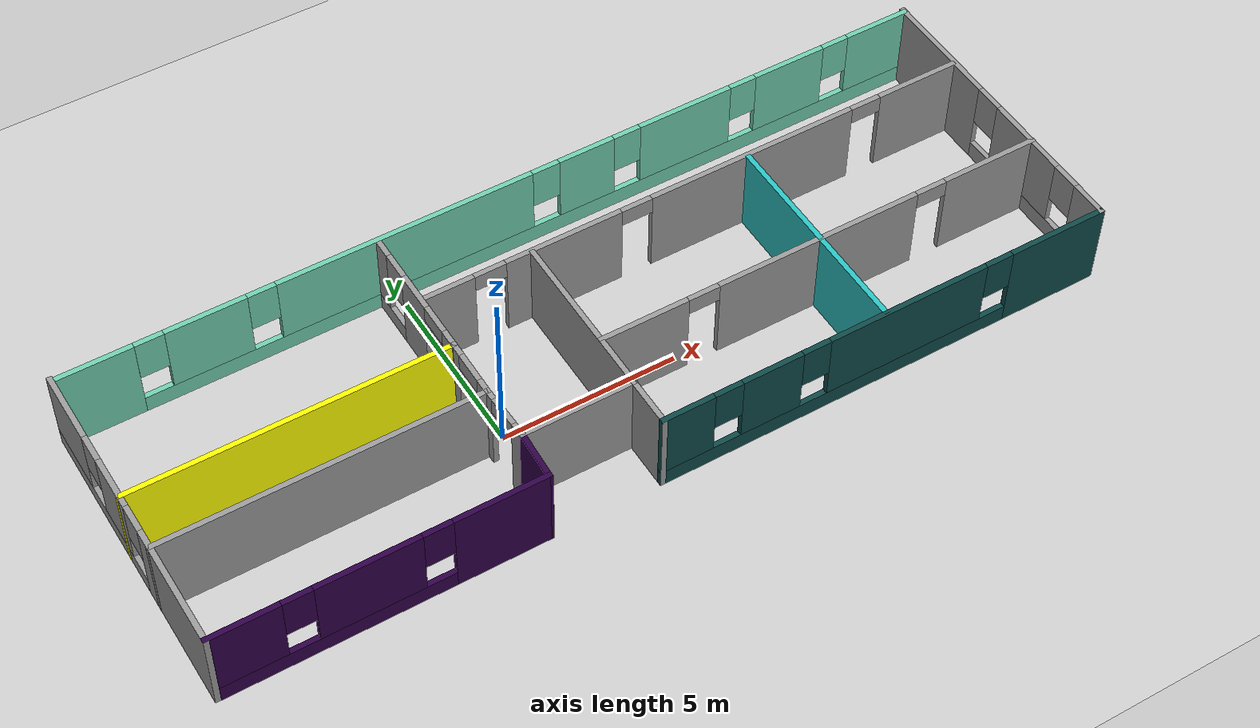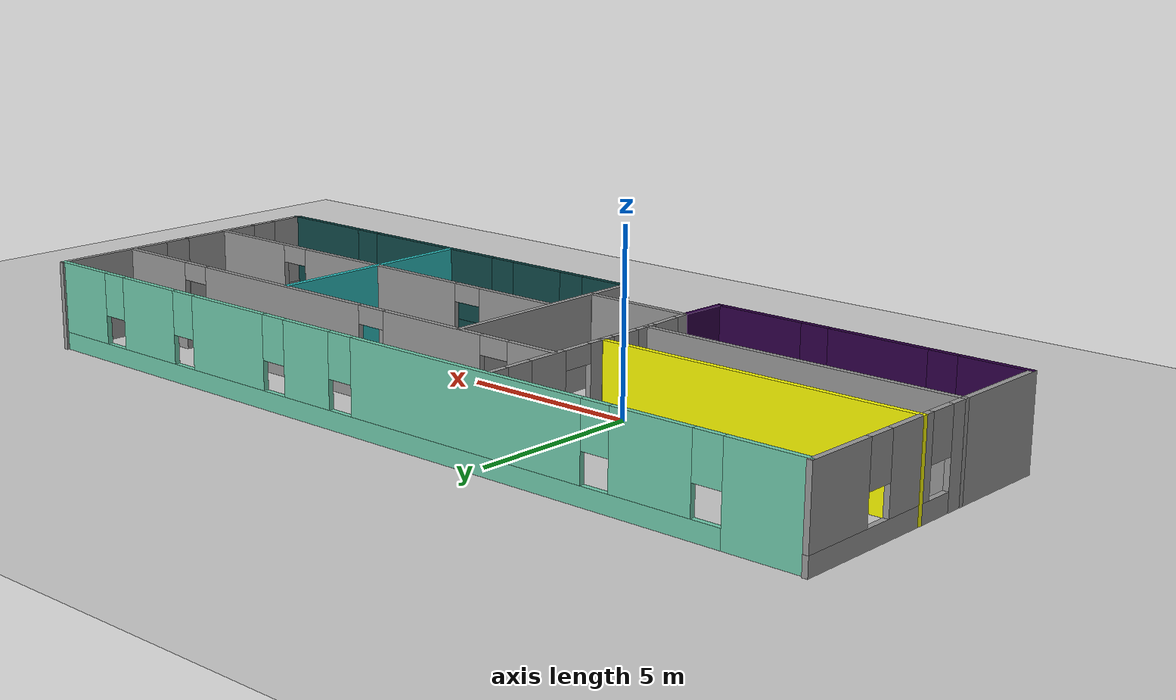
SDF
<sdf version="1.6">
 <world name="default">
  <model name="ground_plane">
   <static>1</static>
   <link name="link">
    <collision name="collision">
     <geometry><plane><normal>0 0 1</normal><size>100 100</size></plane></geometry>
     <surface>
      <contact><collide_bitmask>65535</collide_bitmask></contact>
      <friction><ode><mu>100</mu><mu2>50</mu2></ode></friction>
     </surface>
    </collision>
    <visual name="visual">
     <cast_shadows>0</cast_shadows>
     <geometry><plane><normal>0 0 1</normal><size>100 100</size></plane></geometry>
     <material>
      <script><uri>file://media/materials/scripts/gazebo.material</uri><name>Gazebo/Grey</name></script>
     </material>
    </visual>
   </link>
  </model>
  <model name="Building">
   <pose>3.20811 1.13485 0 0 -0 0</pose>
   <link name="Wall_10">
    <collision name="Wall_10_Collision">
     <geometry><box><size>1.50133 0.15 2.5</size></box></geometry>
     <pose>0 0 1.25 0 -0 0</pose>
    </collision>
    <visual name="Wall_10_Visual">
     <pose>0 0 1.25 0 -0 0</pose>
     <geometry><box><size>1.50133 0.15 2.5</size></box></geometry>
     <material>
      <script><uri>file://media/materials/scripts/gazebo.material</uri><name>Gazebo/Grey</name></script>
      <ambient>0.184314 0 0.278431 1</ambient>
     </material>
     <meta><layer>0</layer></meta>
    </visual>
    <pose>-3.67596 -3.64047 0 0 0 -1.61521</pose>
   </link>
   <link name="Wall_12">
    <collision name="Wall_12_Collision">
     <geometry><box><size>9 0.15 2.5</size></box></geometry>
     <pose>0 0 1.25 0 -0 0</pose>
    </collision>
    <visual name="Wall_12_Visual">
     <pose>0 0 1.25 0 -0 0</pose>
     <geometry><box><size>9 0.15 2.5</size></box></geometry>
     <material>
      <script><uri>file://media/materials/scripts/gazebo.material</uri><name>Gazebo/Grey</name></script>
      <ambient>1 1 1 1</ambient>
     </material>
     <meta><layer>0</layer></meta>
    </visual>
    <pose>-8.13246 -1.39539 0 0 -0 0</pose>
   </link>
   <link name="Wall_13">
    <pose>-3.67671 -2.18043 0 0 0 -1.53165</pose>
    <visual name="Wall_13_Visual_0">
     <pose>-0.681597 0 1.25 0 -0 0</pose>
     <geometry><box><size>0.35809 0.15 2.5</size></box></geometry>
     <material>
      <script><uri>file://media/materials/scripts/gazebo.material</uri><name>Gazebo/Grey</name></script>
      <ambient>1 1 1 1</ambient>
     </material>
     <meta><layer>0</layer></meta>
    </visual>
    <collision name="Wall_13_Collision_0">
     <geometry><box><size>0.35809 0.15 2.5</size></box></geometry>
     <pose>-0.681597 0 1.25 0 -0 0</pose>
    </collision>
    <visual name="Wall_13_Visual_1">
     <pose>0.629045 0 1.25 0 -0 0</pose>
     <geometry><box><size>0.463193 0.15 2.5</size></box></geometry>
     <material>
      <script><uri>file://media/materials/scripts/gazebo.material</uri><name>Gazebo/Grey</name></script>
      <ambient>1 1 1 1</ambient>
     </material>
     <meta><layer>0</layer></meta>
    </visual>
    <collision name="Wall_13_Collision_1">
     <geometry><box><size>0.463193 0.15 2.5</size></box></geometry>
     <pose>0.629045 0 1.25 0 -0 0</pose>
    </collision>
    <visual name="Wall_13_Visual_2">
     <pose>-0.052551 0 2.25 0 -0 0</pose>
     <geometry><box><size>0.9 0.15 0.5</size></box></geometry>
     <material>
      <script><uri>file://media/materials/scripts/gazebo.material</uri><name>Gazebo/Grey</name></script>
      <ambient>1 1 1 1</ambient>
     </material>
     <meta><layer>0</layer></meta>
    </visual>
    <collision name="Wall_13_Collision_2">
     <geometry><box><size>0.9 0.15 0.5</size></box></geometry>
     <pose>-0.052551 0 2.25 0 -0 0</pose>
    </collision>
   </link>
   <link name="Wall_15">
    <collision name="Wall_15_Collision">
     <geometry><box><size>9 0.15 2.5</size></box></geometry>
     <pose>0 0 1.25 0 -0 0</pose>
    </collision>
    <visual name="Wall_15_Visual">
     <pose>0 0 1.25 0 -0 0</pose>
     <geometry><box><size>9 0.15 2.5</size></box></geometry>
     <material>
      <script><uri>file://media/materials/scripts/gazebo.material</uri><name>Gazebo/Grey</name></script>
      <ambient>1 1 0 1</ambient>
     </material>
     <meta><layer>0</layer></meta>
    </visual>
    <pose>-8.13246 0.277573 0 0 -0 0</pose>
   </link>
   <link name="Wall_16">
    <collision name="Wall_16_Collision">
     <geometry><box><size>0.16 0.15 2.5</size></box></geometry>
     <pose>0 0 1.25 0 -0 0</pose>
    </collision>
    <visual name="Wall_16_Visual">
     <pose>0 0 1.25 0 -0 0</pose>
     <geometry><box><size>0.16 0.15 2.5</size></box></geometry>
     <material>
      <script><uri>file://media/materials/scripts/gazebo.material</uri><name>Gazebo/Grey</name></script>
      <ambient>1 1 1 1</ambient>
     </material>
     <meta><layer>0</layer></meta>
    </visual>
    <pose>-3.70246 0.277573 0 0 -0 0</pose>
   </link>
   <link name="Wall_17">
    <pose>-3.70246 -0.558908 0 0 0 -1.57677</pose>
    <visual name="Wall_17_Visual_0">
     <pose>-0.688342 0 1.25 0 -0 0</pose>
     <geometry><box><size>0.446309 0.15 2.5</size></box></geometry>
     <material>
      <script><uri>file://media/materials/scripts/gazebo.material</uri><name>Gazebo/Grey</name></script>
      <ambient>1 1 1 1</ambient>
     </material>
     <meta><layer>0</layer></meta>
    </visual>
    <collision name="Wall_17_Collision_0">
     <geometry><box><size>0.446309 0.15 2.5</size></box></geometry>
     <pose>-0.688342 0 1.25 0 -0 0</pose>
    </collision>
    <visual name="Wall_17_Visual_1">
     <pose>0.673154 0 1.25 0 -0 0</pose>
     <geometry><box><size>0.476684 0.15 2.5</size></box></geometry>
     <material>
      <script><uri>file://media/materials/scripts/gazebo.material</uri><name>Gazebo/Grey</name></script>
      <ambient>1 1 1 1</ambient>
     </material>
     <meta><layer>0</layer></meta>
    </visual>
    <collision name="Wall_17_Collision_1">
     <geometry><box><size>0.476684 0.15 2.5</size></box></geometry>
     <pose>0.673154 0 1.25 0 -0 0</pose>
    </collision>
    <visual name="Wall_17_Visual_2">
     <pose>-0.015188 0 2.25 0 -0 0</pose>
     <geometry><box><size>0.9 0.15 0.5</size></box></geometry>
     <material>
      <script><uri>file://media/materials/scripts/gazebo.material</uri><name>Gazebo/Grey</name></script>
      <ambient>1 1 1 1</ambient>
     </material>
     <meta><layer>0</layer></meta>
    </visual>
    <collision name="Wall_17_Collision_2">
     <geometry><box><size>0.9 0.15 0.5</size></box></geometry>
     <pose>-0.015188 0 2.25 0 -0 0</pose>
    </collision>
   </link>
   <link name="Wall_19">
    <pose>-3.69746 2.20257 0 0 -0 1.5708</pose>
    <visual name="Wall_19_Visual_0">
     <pose>-1.71603 0 1.25 0 -0 0</pose>
     <geometry><box><size>0.567942 0.15 2.5</size></box></geometry>
     <material>
      <script><uri>file://media/materials/scripts/gazebo.material</uri><name>Gazebo/Grey</name></script>
      <ambient>1 1 1 1</ambient>
     </material>
     <meta><layer>0</layer></meta>
    </visual>
    <collision name="Wall_19_Collision_0">
     <geometry><box><size>0.567942 0.15 2.5</size></box></geometry>
     <pose>-1.71603 0 1.25 0 -0 0</pose>
    </collision>
    <visual name="Wall_19_Visual_1">
     <pose>0.057167 0 1.25 0 -0 0</pose>
     <geometry><box><size>1.17845 0.15 2.5</size></box></geometry>
     <material>
      <script><uri>file://media/materials/scripts/gazebo.material</uri><name>Gazebo/Grey</name></script>
      <ambient>1 1 1 1</ambient>
     </material>
     <meta><layer>0</layer></meta>
    </visual>
    <collision name="Wall_19_Collision_1">
     <geometry><box><size>1.17845 0.15 2.5</size></box></geometry>
     <pose>0.057167 0 1.25 0 -0 0</pose>
    </collision>
    <visual name="Wall_19_Visual_2">
     <pose>1.32319 0 0.25 0 -0 0</pose>
     <geometry><box><size>1.35361 0.15 0.5</size></box></geometry>
     <material>
      <script><uri>file://media/materials/scripts/gazebo.material</uri><name>Gazebo/Grey</name></script>
      <ambient>1 1 1 1</ambient>
     </material>
     <meta><layer>0</layer></meta>
    </visual>
    <collision name="Wall_19_Collision_2">
     <geometry><box><size>1.35361 0.15 0.5</size></box></geometry>
     <pose>1.32319 0 0.25 0 -0 0</pose>
    </collision>
    <visual name="Wall_19_Visual_3">
     <pose>1.7232 0 1.5 0 -0 0</pose>
     <geometry><box><size>0.553609 0.15 2</size></box></geometry>
     <material>
      <script><uri>file://media/materials/scripts/gazebo.material</uri><name>Gazebo/Grey</name></script>
      <ambient>1 1 1 1</ambient>
     </material>
     <meta><layer>0</layer></meta>
    </visual>
    <collision name="Wall_19_Collision_3">
     <geometry><box><size>0.553609 0.15 2</size></box></geometry>
     <pose>1.7232 0 1.5 0 -0 0</pose>
    </collision>
    <visual name="Wall_19_Visual_4">
     <pose>1.04639 0 1.9 0 -0 0</pose>
     <geometry><box><size>0.8 0.15 1.2</size></box></geometry>
     <material>
      <script><uri>file://media/materials/scripts/gazebo.material</uri><name>Gazebo/Grey</name></script>
      <ambient>1 1 1 1</ambient>
     </material>
     <meta><layer>0</layer></meta>
    </visual>
    <collision name="Wall_19_Collision_4">
     <geometry><box><size>0.8 0.15 1.2</size></box></geometry>
     <pose>1.04639 0 1.9 0 -0 0</pose>
    </collision>
    <visual name="Wall_19_Visual_5">
     <pose>-0.982058 0 2.25 0 -0 0</pose>
     <geometry><box><size>0.9 0.15 0.5</size></box></geometry>
     <material>
      <script><uri>file://media/materials/scripts/gazebo.material</uri><name>Gazebo/Grey</name></script>
      <ambient>1 1 1 1</ambient>
     </material>
     <meta><layer>0</layer></meta>
    </visual>
    <collision name="Wall_19_Collision_5">
     <geometry><box><size>0.9 0.15 0.5</size></box></geometry>
     <pose>-0.982058 0 2.25 0 -0 0</pose>
    </collision>
   </link>
   <link name="Wall_2">
    <pose>-8.13096 -4.31547 0 0 -0 3.14159</pose>
    <visual name="Wall_2_Visual_0">
     <pose>-3.17905 0 1.25 0 -0 0</pose>
     <geometry><box><size>2.6419 0.15 2.5</size></box></geometry>
     <material>
      <script><uri>file://media/materials/scripts/gazebo.material</uri><name>Gazebo/Grey</name></script>
      <ambient>0.184314 0 0.278431 1</ambient>
     </material>
     <meta><layer>0</layer></meta>
    </visual>
    <collision name="Wall_2_Collision_0">
     <geometry><box><size>2.6419 0.15 2.5</size></box></geometry>
     <pose>-3.17905 0 1.25 0 -0 0</pose>
    </collision>
    <visual name="Wall_2_Visual_1">
     <pose>1.32095 0 0.25 0 -0 0</pose>
     <geometry><box><size>6.3581 0.15 0.5</size></box></geometry>
     <material>
      <script><uri>file://media/materials/scripts/gazebo.material</uri><name>Gazebo/Grey</name></script>
      <ambient>0.184314 0 0.278431 1</ambient>
     </material>
     <meta><layer>0</layer></meta>
    </visual>
    <collision name="Wall_2_Collision_1">
     <geometry><box><size>6.3581 0.15 0.5</size></box></geometry>
     <pose>1.32095 0 0.25 0 -0 0</pose>
    </collision>
    <visual name="Wall_2_Visual_2">
     <pose>0.346089 0 1.5 0 -0 0</pose>
     <geometry><box><size>2.80837 0.15 2</size></box></geometry>
     <material>
      <script><uri>file://media/materials/scripts/gazebo.material</uri><name>Gazebo/Grey</name></script>
      <ambient>0.184314 0 0.278431 1</ambient>
     </material>
     <meta><layer>0</layer></meta>
    </visual>
    <collision name="Wall_2_Collision_2">
     <geometry><box><size>2.80837 0.15 2</size></box></geometry>
     <pose>0.346089 0 1.5 0 -0 0</pose>
    </collision>
    <visual name="Wall_2_Visual_3">
     <pose>3.52514 0 1.5 0 -0 0</pose>
     <geometry><box><size>1.94972 0.15 2</size></box></geometry>
     <material>
      <script><uri>file://media/materials/scripts/gazebo.material</uri><name>Gazebo/Grey</name></script>
      <ambient>0.184314 0 0.278431 1</ambient>
     </material>
     <meta><layer>0</layer></meta>
    </visual>
    <collision name="Wall_2_Collision_3">
     <geometry><box><size>1.94972 0.15 2</size></box></geometry>
     <pose>3.52514 0 1.5 0 -0 0</pose>
    </collision>
    <visual name="Wall_2_Visual_4">
     <pose>-1.4581 0 1.9 0 -0 0</pose>
     <geometry><box><size>0.8 0.15 1.2</size></box></geometry>
     <material>
      <script><uri>file://media/materials/scripts/gazebo.material</uri><name>Gazebo/Grey</name></script>
      <ambient>0.184314 0 0.278431 1</ambient>
     </material>
     <meta><layer>0</layer></meta>
    </visual>
    <collision name="Wall_2_Collision_4">
     <geometry><box><size>0.8 0.15 1.2</size></box></geometry>
     <pose>-1.4581 0 1.9 0 -0 0</pose>
    </collision>
    <visual name="Wall_2_Visual_5">
     <pose>2.15028 0 1.9 0 -0 0</pose>
     <geometry><box><size>0.8 0.15 1.2</size></box></geometry>
     <material>
      <script><uri>file://media/materials/scripts/gazebo.material</uri><name>Gazebo/Grey</name></script>
      <ambient>0.184314 0 0.278431 1</ambient>
     </material>
     <meta><layer>0</layer></meta>
    </visual>
    <collision name="Wall_2_Collision_5">
     <geometry><box><size>0.8 0.15 1.2</size></box></geometry>
     <pose>2.15028 0 1.9 0 -0 0</pose>
    </collision>
   </link>
   <link name="Wall_21">
    <collision name="Wall_21_Collision">
     <geometry><box><size>5 0.15 2.5</size></box></geometry>
     <pose>0 0 1.25 0 -0 0</pose>
    </collision>
    <visual name="Wall_21_Visual">
     <pose>0 0 1.25 0 -0 0</pose>
     <geometry><box><size>5 0.15 2.5</size></box></geometry>
     <material>
      <script><uri>file://media/materials/scripts/gazebo.material</uri><name>Gazebo/Grey</name></script>
      <ambient>1 1 1 1</ambient>
     </material>
     <meta><layer>0</layer></meta>
    </visual>
    <pose>-0.545964 -0.54047 0 0 -0 1.5708</pose>
   </link>
   <link name="Wall_24">
    <pose>4.40487 1.95053 0 0 -0 0</pose>
    <visual name="Wall_24_Visual_0">
     <pose>-7.36956 0 1.25 0 -0 0</pose>
     <geometry><box><size>1.51089 0.15 2.5</size></box></geometry>
     <material>
      <script><uri>file://media/materials/scripts/gazebo.material</uri><name>Gazebo/Grey</name></script>
      <ambient>0.580392 0.568627 0.568627 1</ambient>
     </material>
     <meta><layer>0</layer></meta>
    </visual>
    <collision name="Wall_24_Collision_0">
     <geometry><box><size>1.51089 0.15 2.5</size></box></geometry>
     <pose>-7.36956 0 1.25 0 -0 0</pose>
    </collision>
    <visual name="Wall_24_Visual_1">
     <pose>-4.01968 0 1.25 0 -0 0</pose>
     <geometry><box><size>3.38887 0.15 2.5</size></box></geometry>
     <material>
      <script><uri>file://media/materials/scripts/gazebo.material</uri><name>Gazebo/Grey</name></script>
      <ambient>0.580392 0.568627 0.568627 1</ambient>
     </material>
     <meta><layer>0</layer></meta>
    </visual>
    <collision name="Wall_24_Collision_1">
     <geometry><box><size>3.38887 0.15 2.5</size></box></geometry>
     <pose>-4.01968 0 1.25 0 -0 0</pose>
    </collision>
    <visual name="Wall_24_Visual_2">
     <pose>1.66839 0 1.25 0 -0 0</pose>
     <geometry><box><size>6.18728 0.15 2.5</size></box></geometry>
     <material>
      <script><uri>file://media/materials/scripts/gazebo.material</uri><name>Gazebo/Grey</name></script>
      <ambient>0.580392 0.568627 0.568627 1</ambient>
     </material>
     <meta><layer>0</layer></meta>
    </visual>
    <collision name="Wall_24_Collision_2">
     <geometry><box><size>6.18728 0.15 2.5</size></box></geometry>
     <pose>1.66839 0 1.25 0 -0 0</pose>
    </collision>
    <visual name="Wall_24_Visual_3">
     <pose>6.89351 0 1.25 0 -0 0</pose>
     <geometry><box><size>2.46297 0.15 2.5</size></box></geometry>
     <material>
      <script><uri>file://media/materials/scripts/gazebo.material</uri><name>Gazebo/Grey</name></script>
      <ambient>0.580392 0.568627 0.568627 1</ambient>
     </material>
     <meta><layer>0</layer></meta>
    </visual>
    <collision name="Wall_24_Collision_3">
     <geometry><box><size>2.46297 0.15 2.5</size></box></geometry>
     <pose>6.89351 0 1.25 0 -0 0</pose>
    </collision>
    <visual name="Wall_24_Visual_4">
     <pose>-6.16411 0 2.25 0 -0 0</pose>
     <geometry><box><size>0.9 0.15 0.5</size></box></geometry>
     <material>
      <script><uri>file://media/materials/scripts/gazebo.material</uri><name>Gazebo/Grey</name></script>
      <ambient>0.580392 0.568627 0.568627 1</ambient>
     </material>
     <meta><layer>0</layer></meta>
    </visual>
    <collision name="Wall_24_Collision_4">
     <geometry><box><size>0.9 0.15 0.5</size></box></geometry>
     <pose>-6.16411 0 2.25 0 -0 0</pose>
    </collision>
    <visual name="Wall_24_Visual_5">
     <pose>-1.87525 0 2.25 0 -0 0</pose>
     <geometry><box><size>0.9 0.15 0.5</size></box></geometry>
     <material>
      <script><uri>file://media/materials/scripts/gazebo.material</uri><name>Gazebo/Grey</name></script>
      <ambient>0.580392 0.568627 0.568627 1</ambient>
     </material>
     <meta><layer>0</layer></meta>
    </visual>
    <collision name="Wall_24_Collision_5">
     <geometry><box><size>0.9 0.15 0.5</size></box></geometry>
     <pose>-1.87525 0 2.25 0 -0 0</pose>
    </collision>
    <visual name="Wall_24_Visual_6">
     <pose>5.21203 0 2.25 0 -0 0</pose>
     <geometry><box><size>0.9 0.15 0.5</size></box></geometry>
     <material>
      <script><uri>file://media/materials/scripts/gazebo.material</uri><name>Gazebo/Grey</name></script>
      <ambient>0.580392 0.568627 0.568627 1</ambient>
     </material>
     <meta><layer>0</layer></meta>
    </visual>
    <collision name="Wall_24_Collision_6">
     <geometry><box><size>0.9 0.15 0.5</size></box></geometry>
     <pose>5.21203 0 2.25 0 -0 0</pose>
    </collision>
   </link>
   <link name="Wall_26">
    <pose>6.00746 -1.42581 0 0 -0 0</pose>
    <visual name="Wall_26_Visual_0">
     <pose>-5.33725 0 1.25 0 -0 0</pose>
     <geometry><box><size>2.5755 0.15 2.5</size></box></geometry>
     <material>
      <script><uri>file://media/materials/scripts/gazebo.material</uri><name>Gazebo/Grey</name></script>
      <ambient>0.580392 0.568627 0.568627 1</ambient>
     </material>
     <meta><layer>0</layer></meta>
    </visual>
    <collision name="Wall_26_Collision_0">
     <geometry><box><size>2.5755 0.15 2.5</size></box></geometry>
     <pose>-5.33725 0 1.25 0 -0 0</pose>
    </collision>
    <visual name="Wall_26_Visual_1">
     <pose>-0.147116 0 1.25 0 -0 0</pose>
     <geometry><box><size>6.00477 0.15 2.5</size></box></geometry>
     <material>
      <script><uri>file://media/materials/scripts/gazebo.material</uri><name>Gazebo/Grey</name></script>
      <ambient>0.580392 0.568627 0.568627 1</ambient>
     </material>
     <meta><layer>0</layer></meta>
    </visual>
    <collision name="Wall_26_Collision_1">
     <geometry><box><size>6.00477 0.15 2.5</size></box></geometry>
     <pose>-0.147116 0 1.25 0 -0 0</pose>
    </collision>
    <visual name="Wall_26_Visual_2">
     <pose>5.19013 0 1.25 0 -0 0</pose>
     <geometry><box><size>2.86973 0.15 2.5</size></box></geometry>
     <material>
      <script><uri>file://media/materials/scripts/gazebo.material</uri><name>Gazebo/Grey</name></script>
      <ambient>0.580392 0.568627 0.568627 1</ambient>
     </material>
     <meta><layer>0</layer></meta>
    </visual>
    <collision name="Wall_26_Collision_2">
     <geometry><box><size>2.86973 0.15 2.5</size></box></geometry>
     <pose>5.19013 0 1.25 0 -0 0</pose>
    </collision>
    <visual name="Wall_26_Visual_3">
     <pose>-3.5995 0 2.25 0 -0 0</pose>
     <geometry><box><size>0.9 0.15 0.5</size></box></geometry>
     <material>
      <script><uri>file://media/materials/scripts/gazebo.material</uri><name>Gazebo/Grey</name></script>
      <ambient>0.580392 0.568627 0.568627 1</ambient>
     </material>
     <meta><layer>0</layer></meta>
    </visual>
    <collision name="Wall_26_Collision_3">
     <geometry><box><size>0.9 0.15 0.5</size></box></geometry>
     <pose>-3.5995 0 2.25 0 -0 0</pose>
    </collision>
    <visual name="Wall_26_Visual_4">
     <pose>3.30527 0 2.25 0 -0 0</pose>
     <geometry><box><size>0.9 0.15 0.5</size></box></geometry>
     <material>
      <script><uri>file://media/materials/scripts/gazebo.material</uri><name>Gazebo/Grey</name></script>
      <ambient>0.580392 0.568627 0.568627 1</ambient>
     </material>
     <meta><layer>0</layer></meta>
    </visual>
    <collision name="Wall_26_Collision_4">
     <geometry><box><size>0.9 0.15 0.5</size></box></geometry>
     <pose>3.30527 0 2.25 0 -0 0</pose>
    </collision>
   </link>
   <link name="Wall_28">
    <collision name="Wall_28_Collision">
     <geometry><box><size>6.25 0.15 2.5</size></box></geometry>
     <pose>0 0 1.25 0 -0 0</pose>
    </collision>
    <visual name="Wall_28_Visual">
     <pose>0 0 1.25 0 -0 0</pose>
     <geometry><box><size>6.25 0.15 2.5</size></box></geometry>
     <material>
      <script><uri>file://media/materials/scripts/gazebo.material</uri><name>Gazebo/Grey</name></script>
      <ambient>0.164706 0.760784 0.760784 1</ambient>
     </material>
     <meta><layer>0</layer></meta>
    </visual>
    <pose>5.90597 -1.20115 0 0 0 -1.5708</pose>
   </link>
   <link name="Wall_3">
    <pose>-12.556 0.001628 0 0 -0 1.5708</pose>
    <visual name="Wall_3_Visual_0">
     <pose>-2.62283 0 1.25 0 -0 0</pose>
     <geometry><box><size>3.53854 0.15 2.5</size></box></geometry>
     <material>
      <script><uri>file://media/materials/scripts/gazebo.material</uri><name>Gazebo/Grey</name></script>
      <ambient>1 1 1 1</ambient>
     </material>
     <meta><layer>0</layer></meta>
    </visual>
    <collision name="Wall_3_Collision_0">
     <geometry><box><size>3.53854 0.15 2.5</size></box></geometry>
     <pose>-2.62283 0 1.25 0 -0 0</pose>
    </collision>
    <visual name="Wall_3_Visual_1">
     <pose>1.76927 0 0.25 0 -0 0</pose>
     <geometry><box><size>5.24566 0.15 0.5</size></box></geometry>
     <material>
      <script><uri>file://media/materials/scripts/gazebo.material</uri><name>Gazebo/Grey</name></script>
      <ambient>1 1 1 1</ambient>
     </material>
     <meta><layer>0</layer></meta>
    </visual>
    <collision name="Wall_3_Collision_1">
     <geometry><box><size>5.24566 0.15 0.5</size></box></geometry>
     <pose>1.76927 0 0.25 0 -0 0</pose>
    </collision>
    <visual name="Wall_3_Visual_2">
     <pose>0.7261 0 1.5 0 -0 0</pose>
     <geometry><box><size>1.55932 0.15 2</size></box></geometry>
     <material>
      <script><uri>file://media/materials/scripts/gazebo.material</uri><name>Gazebo/Grey</name></script>
      <ambient>1 1 1 1</ambient>
     </material>
     <meta><layer>0</layer></meta>
    </visual>
    <collision name="Wall_3_Collision_2">
     <geometry><box><size>1.55932 0.15 2</size></box></geometry>
     <pose>0.7261 0 1.5 0 -0 0</pose>
    </collision>
    <visual name="Wall_3_Visual_3">
     <pose>3.34893 0 1.5 0 -0 0</pose>
     <geometry><box><size>2.08634 0.15 2</size></box></geometry>
     <material>
      <script><uri>file://media/materials/scripts/gazebo.material</uri><name>Gazebo/Grey</name></script>
      <ambient>1 1 1 1</ambient>
     </material>
     <meta><layer>0</layer></meta>
    </visual>
    <collision name="Wall_3_Collision_3">
     <geometry><box><size>2.08634 0.15 2</size></box></geometry>
     <pose>3.34893 0 1.5 0 -0 0</pose>
    </collision>
    <visual name="Wall_3_Visual_4">
     <pose>-0.453561 0 1.9 0 -0 0</pose>
     <geometry><box><size>0.8 0.15 1.2</size></box></geometry>
     <material>
      <script><uri>file://media/materials/scripts/gazebo.material</uri><name>Gazebo/Grey</name></script>
      <ambient>1 1 1 1</ambient>
     </material>
     <meta><layer>0</layer></meta>
    </visual>
    <collision name="Wall_3_Collision_4">
     <geometry><box><size>0.8 0.15 1.2</size></box></geometry>
     <pose>-0.453561 0 1.9 0 -0 0</pose>
    </collision>
    <visual name="Wall_3_Visual_5">
     <pose>1.90576 0 1.9 0 -0 0</pose>
     <geometry><box><size>0.8 0.15 1.2</size></box></geometry>
     <material>
      <script><uri>file://media/materials/scripts/gazebo.material</uri><name>Gazebo/Grey</name></script>
      <ambient>1 1 1 1</ambient>
     </material>
     <meta><layer>0</layer></meta>
    </visual>
    <collision name="Wall_3_Collision_5">
     <geometry><box><size>0.8 0.15 1.2</size></box></geometry>
     <pose>1.90576 0 1.9 0 -0 0</pose>
    </collision>
   </link>
   <link name="Wall_4">
    <pose>-0.005964 4.25789 0 0 -0 0</pose>
    <visual name="Wall_4_Visual_0">
     <pose>-11.5114 0 1.25 0 -0 0</pose>
     <geometry><box><size>2.22729 0.15 2.5</size></box></geometry>
     <material>
      <script><uri>file://media/materials/scripts/gazebo.material</uri><name>Gazebo/Grey</name></script>
      <ambient>0.435294 0.796078 0.67451 1</ambient>
     </material>
     <meta><layer>0</layer></meta>
    </visual>
    <collision name="Wall_4_Collision_0">
     <geometry><box><size>2.22729 0.15 2.5</size></box></geometry>
     <pose>-11.5114 0 1.25 0 -0 0</pose>
    </collision>
    <visual name="Wall_4_Visual_1">
     <pose>1.11365 0 0.25 0 -0 0</pose>
     <geometry><box><size>23.0227 0.15 0.5</size></box></geometry>
     <material>
      <script><uri>file://media/materials/scripts/gazebo.material</uri><name>Gazebo/Grey</name></script>
      <ambient>0.435294 0.796078 0.67451 1</ambient>
     </material>
     <meta><layer>0</layer></meta>
    </visual>
    <collision name="Wall_4_Collision_1">
     <geometry><box><size>23.0227 0.15 0.5</size></box></geometry>
     <pose>1.11365 0 0.25 0 -0 0</pose>
    </collision>
    <visual name="Wall_4_Visual_2">
     <pose>-8.47109 0 1.5 0 -0 0</pose>
     <geometry><box><size>2.25324 0.15 2</size></box></geometry>
     <material>
      <script><uri>file://media/materials/scripts/gazebo.material</uri><name>Gazebo/Grey</name></script>
      <ambient>0.435294 0.796078 0.67451 1</ambient>
     </material>
     <meta><layer>0</layer></meta>
    </visual>
    <collision name="Wall_4_Collision_2">
     <geometry><box><size>2.25324 0.15 2</size></box></geometry>
     <pose>-8.47109 0 1.5 0 -0 0</pose>
    </collision>
    <visual name="Wall_4_Visual_3">
     <pose>-2.87348 0 1.5 0 -0 0</pose>
     <geometry><box><size>7.34197 0.15 2</size></box></geometry>
     <material>
      <script><uri>file://media/materials/scripts/gazebo.material</uri><name>Gazebo/Grey</name></script>
      <ambient>0.435294 0.796078 0.67451 1</ambient>
     </material>
     <meta><layer>0</layer></meta>
    </visual>
    <collision name="Wall_4_Collision_3">
     <geometry><box><size>7.34197 0.15 2</size></box></geometry>
     <pose>-2.87348 0 1.5 0 -0 0</pose>
    </collision>
    <visual name="Wall_4_Visual_4">
     <pose>2.42343 0 1.5 0 -0 0</pose>
     <geometry><box><size>1.65184 0.15 2</size></box></geometry>
     <material>
      <script><uri>file://media/materials/scripts/gazebo.material</uri><name>Gazebo/Grey</name></script>
      <ambient>0.435294 0.796078 0.67451 1</ambient>
     </material>
     <meta><layer>0</layer></meta>
    </visual>
    <collision name="Wall_4_Collision_4">
     <geometry><box><size>1.65184 0.15 2</size></box></geometry>
     <pose>2.42343 0 1.5 0 -0 0</pose>
    </collision>
    <visual name="Wall_4_Visual_5">
     <pose>5.45354 0 1.5 0 -0 0</pose>
     <geometry><box><size>2.80837 0.15 2</size></box></geometry>
     <material>
      <script><uri>file://media/materials/scripts/gazebo.material</uri><name>Gazebo/Grey</name></script>
      <ambient>0.435294 0.796078 0.67451 1</ambient>
     </material>
     <meta><layer>0</layer></meta>
    </visual>
    <collision name="Wall_4_Collision_5">
     <geometry><box><size>2.80837 0.15 2</size></box></geometry>
     <pose>5.45354 0 1.5 0 -0 0</pose>
    </collision>
    <visual name="Wall_4_Visual_6">
     <pose>8.73808 0 1.5 0 -0 0</pose>
     <geometry><box><size>2.16072 0.15 2</size></box></geometry>
     <material>
      <script><uri>file://media/materials/scripts/gazebo.material</uri><name>Gazebo/Grey</name></script>
      <ambient>0.435294 0.796078 0.67451 1</ambient>
     </material>
     <meta><layer>0</layer></meta>
    </visual>
    <collision name="Wall_4_Collision_6">
     <geometry><box><size>2.16072 0.15 2</size></box></geometry>
     <pose>8.73808 0 1.5 0 -0 0</pose>
    </collision>
    <visual name="Wall_4_Visual_7">
     <pose>11.6217 0 1.5 0 -0 0</pose>
     <geometry><box><size>2.00656 0.15 2</size></box></geometry>
     <material>
      <script><uri>file://media/materials/scripts/gazebo.material</uri><name>Gazebo/Grey</name></script>
      <ambient>0.435294 0.796078 0.67451 1</ambient>
     </material>
     <meta><layer>0</layer></meta>
    </visual>
    <collision name="Wall_4_Collision_7">
     <geometry><box><size>2.00656 0.15 2</size></box></geometry>
     <pose>11.6217 0 1.5 0 -0 0</pose>
    </collision>
    <visual name="Wall_4_Visual_8">
     <pose>-9.99771 0 1.9 0 -0 0</pose>
     <geometry><box><size>0.8 0.15 1.2</size></box></geometry>
     <material>
      <script><uri>file://media/materials/scripts/gazebo.material</uri><name>Gazebo/Grey</name></script>
      <ambient>0.435294 0.796078 0.67451 1</ambient>
     </material>
     <meta><layer>0</layer></meta>
    </visual>
    <collision name="Wall_4_Collision_8">
     <geometry><box><size>0.8 0.15 1.2</size></box></geometry>
     <pose>-9.99771 0 1.9 0 -0 0</pose>
    </collision>
    <visual name="Wall_4_Visual_9">
     <pose>-6.94447 0 1.9 0 -0 0</pose>
     <geometry><box><size>0.8 0.15 1.2</size></box></geometry>
     <material>
      <script><uri>file://media/materials/scripts/gazebo.material</uri><name>Gazebo/Grey</name></script>
      <ambient>0.435294 0.796078 0.67451 1</ambient>
     </material>
     <meta><layer>0</layer></meta>
    </visual>
    <collision name="Wall_4_Collision_9">
     <geometry><box><size>0.8 0.15 1.2</size></box></geometry>
     <pose>-6.94447 0 1.9 0 -0 0</pose>
    </collision>
    <visual name="Wall_4_Visual_10">
     <pose>1.19751 0 1.9 0 -0 0</pose>
     <geometry><box><size>0.8 0.15 1.2</size></box></geometry>
     <material>
      <script><uri>file://media/materials/scripts/gazebo.material</uri><name>Gazebo/Grey</name></script>
      <ambient>0.435294 0.796078 0.67451 1</ambient>
     </material>
     <meta><layer>0</layer></meta>
    </visual>
    <collision name="Wall_4_Collision_10">
     <geometry><box><size>0.8 0.15 1.2</size></box></geometry>
     <pose>1.19751 0 1.9 0 -0 0</pose>
    </collision>
    <visual name="Wall_4_Visual_11">
     <pose>3.64935 0 1.9 0 -0 0</pose>
     <geometry><box><size>0.8 0.15 1.2</size></box></geometry>
     <material>
      <script><uri>file://media/materials/scripts/gazebo.material</uri><name>Gazebo/Grey</name></script>
      <ambient>0.435294 0.796078 0.67451 1</ambient>
     </material>
     <meta><layer>0</layer></meta>
    </visual>
    <collision name="Wall_4_Collision_11">
     <geometry><box><size>0.8 0.15 1.2</size></box></geometry>
     <pose>3.64935 0 1.9 0 -0 0</pose>
    </collision>
    <visual name="Wall_4_Visual_12">
     <pose>7.25772 0 1.9 0 -0 0</pose>
     <geometry><box><size>0.8 0.15 1.2</size></box></geometry>
     <material>
      <script><uri>file://media/materials/scripts/gazebo.material</uri><name>Gazebo/Grey</name></script>
      <ambient>0.435294 0.796078 0.67451 1</ambient>
     </material>
     <meta><layer>0</layer></meta>
    </visual>
    <collision name="Wall_4_Collision_12">
     <geometry><box><size>0.8 0.15 1.2</size></box></geometry>
     <pose>7.25772 0 1.9 0 -0 0</pose>
    </collision>
    <visual name="Wall_4_Visual_13">
     <pose>10.2184 0 1.9 0 -0 0</pose>
     <geometry><box><size>0.8 0.15 1.2</size></box></geometry>
     <material>
      <script><uri>file://media/materials/scripts/gazebo.material</uri><name>Gazebo/Grey</name></script>
      <ambient>0.435294 0.796078 0.67451 1</ambient>
     </material>
     <meta><layer>0</layer></meta>
    </visual>
    <collision name="Wall_4_Collision_13">
     <geometry><box><size>0.8 0.15 1.2</size></box></geometry>
     <pose>10.2184 0 1.9 0 -0 0</pose>
    </collision>
   </link>
   <link name="Wall_5">
    <pose>12.544 0.001628 0 0 0 -1.5708</pose>
    <visual name="Wall_5_Visual_0">
     <pose>-2.58562 0 1.25 0 -0 0</pose>
     <geometry><box><size>3.61296 0.15 2.5</size></box></geometry>
     <material>
      <script><uri>file://media/materials/scripts/gazebo.material</uri><name>Gazebo/Grey</name></script>
      <ambient>0.580392 0.568627 0.568627 1</ambient>
     </material>
     <meta><layer>0</layer></meta>
    </visual>
    <collision name="Wall_5_Collision_0">
     <geometry><box><size>3.61296 0.15 2.5</size></box></geometry>
     <pose>-2.58562 0 1.25 0 -0 0</pose>
    </collision>
    <visual name="Wall_5_Visual_1">
     <pose>1.80648 0 0.25 0 -0 0</pose>
     <geometry><box><size>5.17124 0.15 0.5</size></box></geometry>
     <material>
      <script><uri>file://media/materials/scripts/gazebo.material</uri><name>Gazebo/Grey</name></script>
      <ambient>0.580392 0.568627 0.568627 1</ambient>
     </material>
     <meta><layer>0</layer></meta>
    </visual>
    <collision name="Wall_5_Collision_1">
     <geometry><box><size>5.17124 0.15 0.5</size></box></geometry>
     <pose>1.80648 0 0.25 0 -0 0</pose>
    </collision>
    <visual name="Wall_5_Visual_2">
     <pose>1.26313 0 1.5 0 -0 0</pose>
     <geometry><box><size>2.48455 0.15 2</size></box></geometry>
     <material>
      <script><uri>file://media/materials/scripts/gazebo.material</uri><name>Gazebo/Grey</name></script>
      <ambient>0.580392 0.568627 0.568627 1</ambient>
     </material>
     <meta><layer>0</layer></meta>
    </visual>
    <collision name="Wall_5_Collision_2">
     <geometry><box><size>2.48455 0.15 2</size></box></geometry>
     <pose>1.26313 0 1.5 0 -0 0</pose>
    </collision>
    <visual name="Wall_5_Visual_3">
     <pose>3.84875 0 1.5 0 -0 0</pose>
     <geometry><box><size>1.08669 0.15 2</size></box></geometry>
     <material>
      <script><uri>file://media/materials/scripts/gazebo.material</uri><name>Gazebo/Grey</name></script>
      <ambient>0.580392 0.568627 0.568627 1</ambient>
     </material>
     <meta><layer>0</layer></meta>
    </visual>
    <collision name="Wall_5_Collision_3">
     <geometry><box><size>1.08669 0.15 2</size></box></geometry>
     <pose>3.84875 0 1.5 0 -0 0</pose>
    </collision>
    <visual name="Wall_5_Visual_4">
     <pose>-0.37914 0 1.9 0 -0 0</pose>
     <geometry><box><size>0.8 0.15 1.2</size></box></geometry>
     <material>
      <script><uri>file://media/materials/scripts/gazebo.material</uri><name>Gazebo/Grey</name></script>
      <ambient>0.580392 0.568627 0.568627 1</ambient>
     </material>
     <meta><layer>0</layer></meta>
    </visual>
    <collision name="Wall_5_Collision_4">
     <geometry><box><size>0.8 0.15 1.2</size></box></geometry>
     <pose>-0.37914 0 1.9 0 -0 0</pose>
    </collision>
    <visual name="Wall_5_Visual_5">
     <pose>2.90541 0 1.9 0 -0 0</pose>
     <geometry><box><size>0.8 0.15 1.2</size></box></geometry>
     <material>
      <script><uri>file://media/materials/scripts/gazebo.material</uri><name>Gazebo/Grey</name></script>
      <ambient>0.580392 0.568627 0.568627 1</ambient>
     </material>
     <meta><layer>0</layer></meta>
    </visual>
    <collision name="Wall_5_Collision_5">
     <geometry><box><size>0.8 0.15 1.2</size></box></geometry>
     <pose>2.90541 0 1.9 0 -0 0</pose>
    </collision>
   </link>
   <link name="Wall_6">
    <pose>5.99404 -4.31547 0 0 -0 3.14159</pose>
    <visual name="Wall_6_Visual_0">
     <pose>-5.18224 0 1.25 0 -0 0</pose>
     <geometry><box><size>2.88552 0.15 2.5</size></box></geometry>
     <material>
      <script><uri>file://media/materials/scripts/gazebo.material</uri><name>Gazebo/Grey</name></script>
      <ambient>0.0588235 0.278431 0.278431 1</ambient>
     </material>
     <meta><layer>0</layer></meta>
    </visual>
    <collision name="Wall_6_Collision_0">
     <geometry><box><size>2.88552 0.15 2.5</size></box></geometry>
     <pose>-5.18224 0 1.25 0 -0 0</pose>
    </collision>
    <visual name="Wall_6_Visual_1">
     <pose>1.44276 0 0.25 0 -0 0</pose>
     <geometry><box><size>10.3645 0.15 0.5</size></box></geometry>
     <material>
      <script><uri>file://media/materials/scripts/gazebo.material</uri><name>Gazebo/Grey</name></script>
      <ambient>0.0588235 0.278431 0.278431 1</ambient>
     </material>
     <meta><layer>0</layer></meta>
    </visual>
    <collision name="Wall_6_Collision_1">
     <geometry><box><size>10.3645 0.15 0.5</size></box></geometry>
     <pose>1.44276 0 0.25 0 -0 0</pose>
    </collision>
    <visual name="Wall_6_Visual_2">
     <pose>-0.586938 0 1.5 0 -0 0</pose>
     <geometry><box><size>4.70509 0.15 2</size></box></geometry>
     <material>
      <script><uri>file://media/materials/scripts/gazebo.material</uri><name>Gazebo/Grey</name></script>
      <ambient>0.0588235 0.278431 0.278431 1</ambient>
     </material>
     <meta><layer>0</layer></meta>
    </visual>
    <collision name="Wall_6_Collision_2">
     <geometry><box><size>4.70509 0.15 2</size></box></geometry>
     <pose>-0.586938 0 1.5 0 -0 0</pose>
    </collision>
    <visual name="Wall_6_Visual_3">
     <pose>3.43779 0 1.5 0 -0 0</pose>
     <geometry><box><size>1.74437 0.15 2</size></box></geometry>
     <material>
      <script><uri>file://media/materials/scripts/gazebo.material</uri><name>Gazebo/Grey</name></script>
      <ambient>0.0588235 0.278431 0.278431 1</ambient>
     </material>
     <meta><layer>0</layer></meta>
    </visual>
    <collision name="Wall_6_Collision_3">
     <geometry><box><size>1.74437 0.15 2</size></box></geometry>
     <pose>3.43779 0 1.5 0 -0 0</pose>
    </collision>
    <visual name="Wall_6_Visual_4">
     <pose>5.86749 0 1.5 0 -0 0</pose>
     <geometry><box><size>1.51503 0.15 2</size></box></geometry>
     <material>
      <script><uri>file://media/materials/scripts/gazebo.material</uri><name>Gazebo/Grey</name></script>
      <ambient>0.0588235 0.278431 0.278431 1</ambient>
     </material>
     <meta><layer>0</layer></meta>
    </visual>
    <collision name="Wall_6_Collision_4">
     <geometry><box><size>1.51503 0.15 2</size></box></geometry>
     <pose>5.86749 0 1.5 0 -0 0</pose>
    </collision>
    <visual name="Wall_6_Visual_5">
     <pose>-3.33948 0 1.9 0 -0 0</pose>
     <geometry><box><size>0.8 0.15 1.2</size></box></geometry>
     <material>
      <script><uri>file://media/materials/scripts/gazebo.material</uri><name>Gazebo/Grey</name></script>
      <ambient>0.0588235 0.278431 0.278431 1</ambient>
     </material>
     <meta><layer>0</layer></meta>
    </visual>
    <collision name="Wall_6_Collision_5">
     <geometry><box><size>0.8 0.15 1.2</size></box></geometry>
     <pose>-3.33948 0 1.9 0 -0 0</pose>
    </collision>
    <visual name="Wall_6_Visual_6">
     <pose>2.1656 0 1.9 0 -0 0</pose>
     <geometry><box><size>0.8 0.15 1.2</size></box></geometry>
     <material>
      <script><uri>file://media/materials/scripts/gazebo.material</uri><name>Gazebo/Grey</name></script>
      <ambient>0.0588235 0.278431 0.278431 1</ambient>
     </material>
     <meta><layer>0</layer></meta>
    </visual>
    <collision name="Wall_6_Collision_6">
     <geometry><box><size>0.8 0.15 1.2</size></box></geometry>
     <pose>2.1656 0 1.9 0 -0 0</pose>
    </collision>
    <visual name="Wall_6_Visual_7">
     <pose>4.70997 0 1.9 0 -0 0</pose>
     <geometry><box><size>0.8 0.15 1.2</size></box></geometry>
     <material>
      <script><uri>file://media/materials/scripts/gazebo.material</uri><name>Gazebo/Grey</name></script>
      <ambient>0.0588235 0.278431 0.278431 1</ambient>
     </material>
     <meta><layer>0</layer></meta>
    </visual>
    <collision name="Wall_6_Collision_7">
     <geometry><box><size>0.8 0.15 1.2</size></box></geometry>
     <pose>4.70997 0 1.9 0 -0 0</pose>
    </collision>
   </link>
   <link name="Wall_7">
    <collision name="Wall_7_Collision">
     <geometry><box><size>1.5 0.15 2.5</size></box></geometry>
     <pose>0 0 1.25 0 -0 0</pose>
    </collision>
    <visual name="Wall_7_Visual">
     <pose>0 0 1.25 0 -0 0</pose>
     <geometry><box><size>1.5 0.15 2.5</size></box></geometry>
     <material>
      <script><uri>file://media/materials/scripts/gazebo.material</uri><name>Gazebo/Grey</name></script>
      <ambient>1 1 1 1</ambient>
     </material>
     <meta><layer>0</layer></meta>
    </visual>
    <pose>-0.555964 -3.64047 0 0 -0 1.5708</pose>
   </link>
   <link name="Wall_8">
    <collision name="Wall_8_Collision">
     <geometry><box><size>0.16 0.15 2.5</size></box></geometry>
     <pose>0 0 1.25 0 -0 0</pose>
    </collision>
    <visual name="Wall_8_Visual">
     <pose>0 0 1.25 0 -0 0</pose>
     <geometry><box><size>0.16 0.15 2.5</size></box></geometry>
     <material>
      <script><uri>file://media/materials/scripts/gazebo.material</uri><name>Gazebo/Grey</name></script>
      <ambient>1 1 1 1</ambient>
     </material>
     <meta><layer>0</layer></meta>
    </visual>
    <pose>-0.550964 -2.96547 0 0 -0 0</pose>
   </link>
   <link name="Wall_9">
    <collision name="Wall_9_Collision">
     <geometry><box><size>3.25 0.15 2.5</size></box></geometry>
     <pose>0 0 1.25 0 -0 0</pose>
    </collision>
    <visual name="Wall_9_Visual">
     <pose>0 0 1.25 0 -0 0</pose>
     <geometry><box><size>3.25 0.15 2.5</size></box></geometry>
     <material>
      <script><uri>file://media/materials/scripts/gazebo.material</uri><name>Gazebo/Grey</name></script>
      <ambient>1 1 1 1</ambient>
     </material>
     <meta><layer>0</layer></meta>
    </visual>
    <pose>-2.09596 -2.96547 0 0 -0 3.14159</pose>
   </link>
   <static>1</static>
  </model>
 </world>
</sdf>
